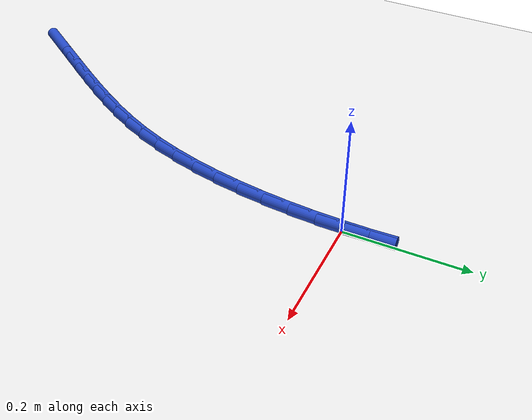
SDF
<sdf version="1.6">
 <world name="default">
  <model name="ground_plane">
   <static>1</static>
   <link name="link">
    <collision name="collision">
     <geometry><plane><normal>0 0 1</normal><size>100 100</size></plane></geometry>
     <surface><friction><ode><mu>100</mu><mu2>50</mu2></ode></friction></surface>
    </collision>
    <visual name="visual">
     <cast_shadows>0</cast_shadows>
     <geometry><plane><normal>0 0 1</normal><size>100 100</size></plane></geometry>
     <material>
      <script><uri>file://media/materials/scripts/gazebo.material</uri><name>Gazebo/WhiteGlow</name></script>
     </material>
    </visual>
   </link>
  </model>
  <model name="line">
   <link name="link_0">
    <pose>1.734723475976807e-17 1.3877787807814457e-17 0.01 0 1.57 1.5637793598102099</pose>
    <collision name="collision">
     <geometry><cylinder><radius>0.01</radius><length>0.08</length></cylinder></geometry>
    </collision>
    <visual name="visual">
     <material>
      <script><name>Gazebo/Blue</name><uri>file://media/materials/scripts/gazebo.material</uri></script>
     </material>
     <geometry><cylinder><radius>0.01</radius><length>0.08</length></cylinder></geometry>
    </visual>
   </link>
   <link name="link_1">
    <pose>0.000321146928528067 0.04576644843174412 0.01 0 1.57 -1.538988337226999</pose>
    <collision name="collision">
     <geometry><cylinder><radius>0.01</radius><length>0.08</length></cylinder></geometry>
    </collision>
    <visual name="visual">
     <material>
      <script><name>Gazebo/Blue</name><uri>file://media/materials/scripts/gazebo.material</uri></script>
     </material>
     <geometry><cylinder><radius>0.01</radius><length>0.08</length></cylinder></geometry>
    </visual>
   </link>
   <link name="link_153">
    <pose>-0.26876125848730004 -0.6846697872062804 0.01 0 1.57 0.9530707574533538</pose>
    <collision name="collision">
     <geometry><cylinder><radius>0.01</radius><length>0.08</length></cylinder></geometry>
    </collision>
    <visual name="visual">
     <material>
      <script><name>Gazebo/Blue</name><uri>file://media/materials/scripts/gazebo.material</uri></script>
     </material>
     <geometry><cylinder><radius>0.01</radius><length>0.08</length></cylinder></geometry>
    </visual>
   </link>
   <link name="link_154">
    <pose>-0.2388346863769799 -0.6425482177398593 0.01 0 1.57 0.9521796092916313</pose>
    <collision name="collision">
     <geometry><cylinder><radius>0.01</radius><length>0.08</length></cylinder></geometry>
    </collision>
    <visual name="visual">
     <material>
      <script><name>Gazebo/Blue</name><uri>file://media/materials/scripts/gazebo.material</uri></script>
     </material>
     <geometry><cylinder><radius>0.01</radius><length>0.08</length></cylinder></geometry>
    </visual>
   </link>
   <link name="link_155">
    <pose>-0.2105692577272808 -0.602839697860166 0.01 0 1.57 0.9585205226512442</pose>
    <collision name="collision">
     <geometry><cylinder><radius>0.01</radius><length>0.08</length></cylinder></geometry>
    </collision>
    <visual name="visual">
     <material>
      <script><name>Gazebo/Blue</name><uri>file://media/materials/scripts/gazebo.material</uri></script>
     </material>
     <geometry><cylinder><radius>0.01</radius><length>0.08</length></cylinder></geometry>
    </visual>
   </link>
   <link name="link_156">
    <pose>-0.1839968838055711 -0.5650041168329697 0.01 0 1.57 0.9731787064062822</pose>
    <collision name="collision">
     <geometry><cylinder><radius>0.01</radius><length>0.08</length></cylinder></geometry>
    </collision>
    <visual name="visual">
     <material>
      <script><name>Gazebo/Blue</name><uri>file://media/materials/scripts/gazebo.material</uri></script>
     </material>
     <geometry><cylinder><radius>0.01</radius><length>0.08</length></cylinder></geometry>
    </visual>
   </link>
   <link name="link_157">
    <pose>-0.15914899728107063 -0.528497737657889 0.01 0 1.57 0.996917180726455</pose>
    <collision name="collision">
     <geometry><cylinder><radius>0.01</radius><length>0.08</length></cylinder></geometry>
    </collision>
    <visual name="visual">
     <material>
      <script><name>Gazebo/Blue</name><uri>file://media/materials/scripts/gazebo.material</uri></script>
     </material>
     <geometry><cylinder><radius>0.01</radius><length>0.08</length></cylinder></geometry>
    </visual>
   </link>
   <link name="link_158">
    <pose>-0.1360570308229986 -0.49277682333454237 0.01 0 1.57 1.0300224720723243</pose>
    <collision name="collision">
     <geometry><cylinder><radius>0.01</radius><length>0.08</length></cylinder></geometry>
    </collision>
    <visual name="visual">
     <material>
      <script><name>Gazebo/Blue</name><uri>file://media/materials/scripts/gazebo.material</uri></script>
     </material>
     <geometry><cylinder><radius>0.01</radius><length>0.08</length></cylinder></geometry>
    </visual>
   </link>
   <link name="link_159">
    <pose>-0.11475241710057568 -0.4572976368625497 0.01 0 1.57 1.0721216065321273</pose>
    <collision name="collision">
     <geometry><cylinder><radius>0.01</radius><length>0.08</length></cylinder></geometry>
    </collision>
    <visual name="visual">
     <material>
      <script><name>Gazebo/Blue</name><uri>file://media/materials/scripts/gazebo.material</uri></script>
     </material>
     <geometry><cylinder><radius>0.01</radius><length>0.08</length></cylinder></geometry>
    </visual>
   </link>
   <link name="link_160">
    <pose>-0.09526658878302106 -0.42151644124152926 0.01 0 1.57 1.122063761271368</pose>
    <collision name="collision">
     <geometry><cylinder><radius>0.01</radius><length>0.08</length></cylinder></geometry>
    </collision>
    <visual name="visual">
     <material>
      <script><name>Gazebo/Blue</name><uri>file://media/materials/scripts/gazebo.material</uri></script>
     </material>
     <geometry><cylinder><radius>0.01</radius><length>0.08</length></cylinder></geometry>
    </visual>
   </link>
   <link name="link_161">
    <pose>-0.07763097853955452 -0.38488949947109996 0.01 0 1.57 1.1778650419845458</pose>
    <collision name="collision">
     <geometry><cylinder><radius>0.01</radius><length>0.08</length></cylinder></geometry>
    </collision>
    <visual name="visual">
     <material>
      <script><name>Gazebo/Blue</name><uri>file://media/materials/scripts/gazebo.material</uri></script>
     </material>
     <geometry><cylinder><radius>0.01</radius><length>0.08</length></cylinder></geometry>
    </visual>
   </link>
   <link name="link_162">
    <pose>-0.06187636977252587 -0.34687947554502585 0.01 0 1.57 1.2341233298310739</pose>
    <collision name="collision">
     <geometry><cylinder><radius>0.01</radius><length>0.08</length></cylinder></geometry>
    </collision>
    <visual name="visual">
     <material>
      <script><name>Gazebo/Blue</name><uri>file://media/materials/scripts/gazebo.material</uri></script>
     </material>
     <geometry><cylinder><radius>0.01</radius><length>0.08</length></cylinder></geometry>
    </visual>
   </link>
   <link name="link_163">
    <pose>-0.04800371837222098 -0.3072430970216197 0.01 0 1.57 1.285989699498062</pose>
    <collision name="collision">
     <geometry><cylinder><radius>0.01</radius><length>0.08</length></cylinder></geometry>
    </collision>
    <visual name="visual">
     <material>
      <script><name>Gazebo/Blue</name><uri>file://media/materials/scripts/gazebo.material</uri></script>
     </material>
     <geometry><cylinder><radius>0.01</radius><length>0.08</length></cylinder></geometry>
    </visual>
   </link>
   <link name="link_164">
    <pose>-0.035972348465151516 -0.26614753081558373 0.01 0 1.57 1.3337305057888564</pose>
    <collision name="collision">
     <geometry><cylinder><radius>0.01</radius><length>0.08</length></cylinder></geometry>
    </collision>
    <visual name="visual">
     <material>
      <script><name>Gazebo/Blue</name><uri>file://media/materials/scripts/gazebo.material</uri></script>
     </material>
     <geometry><cylinder><radius>0.01</radius><length>0.08</length></cylinder></geometry>
    </visual>
   </link>
   <link name="link_165">
    <pose>-0.025738491473090895 -0.22379043420827202 0.01 0 1.57 1.3779241158667959</pose>
    <collision name="collision">
     <geometry><cylinder><radius>0.01</radius><length>0.08</length></cylinder></geometry>
    </collision>
    <visual name="visual">
     <material>
      <script><name>Gazebo/Blue</name><uri>file://media/materials/scripts/gazebo.material</uri></script>
     </material>
     <geometry><cylinder><radius>0.01</radius><length>0.08</length></cylinder></geometry>
    </visual>
   </link>
   <link name="link_166">
    <pose>-0.01725837881781283 -0.18036946448103966 0.01 0 1.57 1.4191017182802312</pose>
    <collision name="collision">
     <geometry><cylinder><radius>0.01</radius><length>0.08</length></cylinder></geometry>
    </collision>
    <visual name="visual">
     <material>
      <script><name>Gazebo/Blue</name><uri>file://media/materials/scripts/gazebo.material</uri></script>
     </material>
     <geometry><cylinder><radius>0.01</radius><length>0.08</length></cylinder></geometry>
    </visual>
   </link>
   <link name="link_167">
    <pose>-0.010488241921091018 -0.13608227891524152 0.01 0 1.57 1.4577480682675308</pose>
    <collision name="collision">
     <geometry><cylinder><radius>0.01</radius><length>0.08</length></cylinder></geometry>
    </collision>
    <visual name="visual">
     <material>
      <script><name>Gazebo/Blue</name><uri>file://media/materials/scripts/gazebo.material</uri></script>
     </material>
     <geometry><cylinder><radius>0.01</radius><length>0.08</length></cylinder></geometry>
    </visual>
   </link>
   <link name="link_168">
    <pose>-0.005384312204699069 -0.09112653479223158 0.01 0 1.57 1.4943060063300653</pose>
    <collision name="collision">
     <geometry><cylinder><radius>0.01</radius><length>0.08</length></cylinder></geometry>
    </collision>
    <visual name="visual">
     <material>
      <script><name>Gazebo/Blue</name><uri>file://media/materials/scripts/gazebo.material</uri></script>
     </material>
     <geometry><cylinder><radius>0.01</radius><length>0.08</length></cylinder></geometry>
    </visual>
   </link>
   <link name="link_169">
    <pose>-0.0019028210904108657 -0.0456998893933664 0.01 0 1.57 1.5291830397857031</pose>
    <collision name="collision">
     <geometry><cylinder><radius>0.01</radius><length>0.08</length></cylinder></geometry>
    </collision>
    <visual name="visual">
     <material>
      <script><name>Gazebo/Blue</name><uri>file://media/materials/scripts/gazebo.material</uri></script>
     </material>
     <geometry><cylinder><radius>0.01</radius><length>0.08</length></cylinder></geometry>
    </visual>
   </link>
   <link name="link_170">
    <pose>6.938893903907228e-18 -8.326672684688674e-17 0.01 0 1.57 1.5627590161280651</pose>
    <collision name="collision">
     <geometry><cylinder><radius>0.01</radius><length>0.08</length></cylinder></geometry>
    </collision>
    <visual name="visual">
     <material>
      <script><name>Gazebo/Blue</name><uri>file://media/materials/scripts/gazebo.material</uri></script>
     </material>
     <geometry><cylinder><radius>0.01</radius><length>0.08</length></cylinder></geometry>
    </visual>
   </link>
   <link name="link_171">
    <pose>0.00036791964475984575 0.045775476106512496 0.01 0 1.57 1.5627590161280653</pose>
    <collision name="collision">
     <geometry><cylinder><radius>0.01</radius><length>0.08</length></cylinder></geometry>
    </collision>
    <visual name="visual">
     <material>
      <script><name>Gazebo/Blue</name><uri>file://media/materials/scripts/gazebo.material</uri></script>
     </material>
     <geometry><cylinder><radius>0.01</radius><length>0.08</length></cylinder></geometry>
    </visual>
   </link>
  </model>
 </world>
</sdf>
